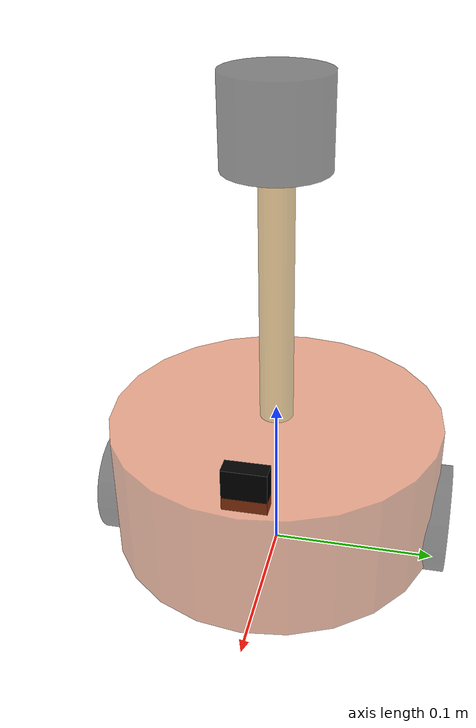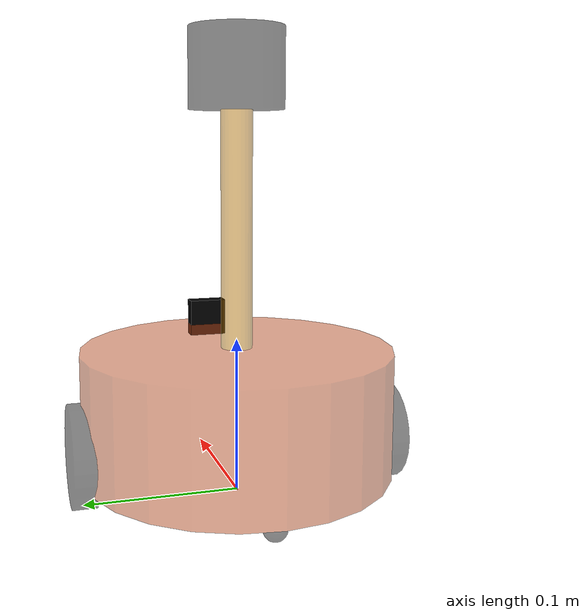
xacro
<robot name="my_car" xmlns:xacro="http://wiki.ros.org/xacro">

    <xacro:include filename="head.xacro" />
    <xacro:include filename="demo05_car_base.urdf.xacro" />
    <xacro:include filename="demo06_car_camera.urdf.xacro" />
    <xacro:include filename="demo07_car_laser.urdf.xacro" />

    <!-- moving control -->
    <xacro:include filename="gazebo/move.xacro" />
    <!-- laser -->
    <xacro:include filename="gazebo/laser.xacro" />
    <!-- camera -->
    <!-- kinect -->
    <xacro:include filename="gazebo/kinect.xacro" />

</robot>

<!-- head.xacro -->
<robot name="base" xmlns:xacro="http://wiki.ros.org/xacro">
    <!-- Macro for inertia matrix -->
    <xacro:macro name="sphere_inertial_matrix" params="m r">
        <inertial>
            <mass value="${m}" />
            <inertia ixx="${2*m*r*r/5}" ixy="0" ixz="0"
                iyy="${2*m*r*r/5}" iyz="0"
                izz="${2*m*r*r/5}" />
        </inertial>
    </xacro:macro>

    <xacro:macro name="cylinder_inertial_matrix" params="m r h">
        <inertial>
            <mass value="${m}" />
            <inertia ixx="${m*(3*r*r+h*h)/12}" ixy="0" ixz="0"
                iyy="${m*(3*r*r+h*h)/12}" iyz="0"
                izz="${m*r*r/2}" />
        </inertial>
    </xacro:macro>

    <xacro:macro name="Box_inertial_matrix" params="m l w h">
        <inertial>
            <mass value="${m}" />
            <inertia ixx="${m*(w*w + l*l)/12}" ixy="0" ixz="0"
                iyy="${m*(w*w + l*l)/12}" iyz="0"
                izz="${m*(w*w + h*h)/12}" />
        </inertial>
    </xacro:macro>
</robot>

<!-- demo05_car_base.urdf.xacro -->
<robot name="my_car" xmlns:xacro="http://wiki.ros.org/xacro">

    <!-- 1. Adding the base_footprint -->
    <!-- footprint_radius variables and constants -->
    <xacro:property name="footprint_radius" value="0.001" />

    <link name="base_footprint">
        <visual>
            <geometry>
                <sphere radius="${footprint_radius}" />
            </geometry>
        </visual>
    </link>

    <!-- 2. Adding the base_link and its joint -->
    <!-- base_link variables and constants -->
    <xacro:property name="base_radius" value="0.1" />
    <xacro:property name="base_length" value="0.08" />
    <xacro:property name="base_mass" value="0.5" />
    <xacro:property name="lidi" value="0.015" />
    <xacro:property name="base_joint_z" value="${base_length / 2 + lidi}" />

    <link name="base_link">
        <visual>
            <geometry>
                <cylinder radius="${base_radius}" length="${base_length}"/>
            </geometry>
            <origin xyz="0 0 0" rpy="0 0 0"/>
            <material name="baselink_color">
                <color rgba="0.8 0.3 0.1 0.5"/>
            </material>
        </visual>
        <collision>
            <geometry>
                <cylinder radius="${base_radius}" length="${base_length}"/>
            </geometry>
            <origin xyz="0 0 0" rpy="0 0 0"/>
        </collision>
        <!-- inertial matrix (from head.xacro) -->
        <xacro:cylinder_inertial_matrix m="${base_mass}" r="${base_radius}" h="${base_length}" />
    </link>

    <!-- the joint of the base_link and the base_footprint -->
    <joint name="link2base_footprint" type="fixed">
        <parent link="base_footprint"/>
        <child link="base_link"/>
        <origin xyz="0 0 ${base_joint_z}" />
    </joint>

    <gazebo reference="base_link" >
        <material>Gazebo/Yellow</material>
    </gazebo>

    <!-- 3. Adding the driving wheels and their joint -->
    <!-- wheel variables and constants -->
    <xacro:property name="wheel_radius" value="0.0325" />
    <xacro:property name="wheel_length" value="0.015" />
    <xacro:property name="wheel_mass" value="0.05" />
    <xacro:property name="PI" value="3.1415927" />
    <xacro:property name="wheel_joint_z" value="${ -base_length / 2 - lidi + wheel_radius}" />
    <!-- wheel macro -->
    <xacro:macro name="wheel_func" params="wheel_name flag" >

        <link name="${wheel_name}_wheel">
            <visual>
                <geometry>
                    <cylinder radius="${wheel_radius}" length="${wheel_length}"/>
                </geometry>
                <origin xyz="0 0 0" rpy="${PI / 2} 0 0"/>
                <material name="wheel_color">
                    <color rgba="0 0 0 0.5"/>
                </material>
            </visual>
            <collision>
                <geometry>
                    <cylinder radius="${wheel_radius}" length="${wheel_length}"/>
                </geometry>
                <origin xyz="0 0 0" rpy="${PI / 2} 0 0"/>
            </collision>
            <!-- inertial matrix (from head.xacro) -->
            <xacro:cylinder_inertial_matrix m="${wheel_mass}" r="${wheel_radius}" h="${wheel_length}" />
        </link>

        <!-- the joint of the base_link and the left_wheel -->
        <joint name="${wheel_name}2link" type="continuous">
            <parent link="base_link"/>
            <child link="${wheel_name}_wheel"/>
            <origin xyz="0 ${0.1 * flag} ${wheel_joint_z}" rpy="0 0 0" />
            <axis xyz="0 1 0"/>
        </joint>

        <gazebo reference="${wheel_name}_wheel" >
            <material>Gazebo/Red</material>
        </gazebo>

    </xacro:macro>

    <!-- call wheel macro -->
    <xacro:wheel_func wheel_name="left" flag="1" />
    <xacro:wheel_func wheel_name="right" flag="-1" />

    <!-- 4. Adding the universal wheel and its joint -->
    <!-- wheel variables and constants -->
    <xacro:property name="universal_wheel_radius" value="0.0075" />
    <xacro:property name="universal_wheel_mass" value="0.03" />
    <xacro:property name="universal_joint_z" value="${(base_length / 2 + lidi - universal_wheel_radius) * -1}" />
    <!-- wheel macro -->
    <xacro:macro name="universal_wheel_func" params="universal_wheel_name flag" >

        <link name="${universal_wheel_name}_wheel">
            <visual>
                <geometry>
                    <sphere radius="${universal_wheel_radius}" />
                </geometry>
                <origin xyz="0 0 0" rpy="0 0 0"/>
                <material name="black">
                    <color rgba="0 0 0 0.5"/>
                </material>
            </visual>
            <collision>
                <geometry>
                    <sphere radius="${universal_wheel_radius}" />
                </geometry>
                <origin xyz="0 0 0" rpy="0 0 0"/>
            </collision>
             <!-- inertial matrix (from head.xacro) -->
             <xacro:sphere_inertial_matrix m="${universal_wheel_mass}" r="${universal_wheel_radius}" />
        </link>

        <!-- the joint of the base_link and the front_wheel -->
        <joint name="${universal_wheel_name}2link" type="continuous">
            <parent link="base_link"/>
            <child link="${universal_wheel_name}_wheel"/>
            <origin xyz="${0.08 * flag} 0 ${universal_joint_z}" rpy="0 0 0" />
            <axis xyz="1 1 1"/>
        </joint>

        <gazebo reference="${universal_wheel_name}_wheel" >
            <material>Gazebo/Red</material>
        </gazebo>

    </xacro:macro>

    <!-- call wheel macro -->
    <xacro:universal_wheel_func universal_wheel_name="front" flag="1" />
    <xacro:universal_wheel_func universal_wheel_name="back" flag="-1" />

</robot>

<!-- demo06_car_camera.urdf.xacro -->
<robot name="my_car" xmlns:xacro="http://wiki.ros.org/xacro">
    <!-- car_camera property -->
    <xacro:property name="camera_length" value="0.01" />
    <xacro:property name="camera_width" value="0.025" />
    <xacro:property name="camera_height" value="0.025" />
    <xacro:property name="camera_mass" value="0.01" />
    <xacro:property name="joint_camera_x" value="0.08" />
    <xacro:property name="joint_camera_y" value="0" />
    <xacro:property name="joint_camera_z" value="${base_length / 2 + camera_length / 2}" />

    <!-- link and joint -->
    <link name="camera">
        <visual>
            <geometry>
               <box size="${camera_length} ${camera_width} ${camera_height}"/>
            </geometry>
            <material name="black" >
                <color rgba="0.0 0.0 0.0 1"/>
            </material>
        </visual>
        <collision>
            <geometry>
                <box size="${camera_length} ${camera_width} ${camera_height}"/>
             </geometry>
        </collision>
        <xacro:Box_inertial_matrix m="${camera_mass}" l="${camera_length}" w="${camera_width}" h="${camera_height}" />
    </link>

    <joint name="camera2base" type="fixed">
        <parent link="base_link"/>
        <child link="camera"/>
        <origin xyz="${joint_camera_x} ${joint_camera_y} ${joint_camera_z}" rpy="0 0 0" />
    </joint>

    <gazebo reference="camera" >
        <material>Gazebo/Blue</material>
    </gazebo>

</robot>

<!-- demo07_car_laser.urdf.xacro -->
<robot name="my_car" xmlns:xacro="http://wiki.ros.org/xacro">
    <!-- car_laser property -->
    <xacro:property name="support_length" value="0.15" />
    <xacro:property name="support_radius" value="0.01" />
    <xacro:property name="support_mass" value="0.02" />
    <xacro:property name="joint_support_x" value="0" />
    <xacro:property name="joint_support_y" value="0" />
    <xacro:property name="joint_support_z" value="${base_length / 2 + support_length / 2}" />

    <xacro:property name="laser_length" value="0.05" />
    <xacro:property name="laser_radius" value="0.03" />
    <xacro:property name="laser_mass" value="0.1" />
    <xacro:property name="joint_laser_x" value="0" />
    <xacro:property name="joint_laser_y" value="0" />
    <xacro:property name="joint_laser_z" value="${support_length / 2 + laser_length / 2}" />

    <!-- 1.support -->
    <link name="support">
        <visual>
            <geometry>
                <cylinder radius="${support_radius}" length="${support_length}"/>
            </geometry>
            <material name="yellow" >
                <color rgba="0.8 0.5 0.0 0.5"/>
            </material>
        </visual>
        <collision>
            <geometry>
                <cylinder radius="${support_radius}" length="${support_length}"/>
            </geometry>
        </collision>
        <xacro:cylinder_inertial_matrix m="${support_mass}" r="${support_radius}" h="${support_length}" />
    </link>
    <joint name="support2base" type="fixed">
        <parent link="base_link"/>
        <child link="support"/>
        <origin xyz="${joint_support_x} ${joint_support_y} ${joint_support_z}" rpy="0 0 0" />
    </joint>
    <gazebo reference="support" >
        <material>Gazebo/White</material>
    </gazebo>

    <!-- 2.laser -->
    <link name="laser">
        <visual>
            <geometry>
                <cylinder radius="${laser_radius}" length="${laser_length}"/>
            </geometry>
            <material name="black" >
                <color rgba="0 0 0 0.5"/>
            </material>
        </visual>
        <collision>
            <geometry>
                <cylinder radius="${laser_radius}" length="${laser_length}"/>
            </geometry>
        </collision>
        <xacro:cylinder_inertial_matrix m="${laser_mass}" r="${laser_radius}" h="${laser_length}" />
    </link>
    <joint name="laser2support" type="fixed">
        <parent link="support"/>
        <child link="laser"/>
        <origin xyz="${joint_laser_x} ${joint_laser_y} ${joint_laser_z}" rpy="0 0 0" />
    </joint>
    <gazebo reference="laser" >
        <material>Gazebo/Black</material>
    </gazebo>

</robot>
